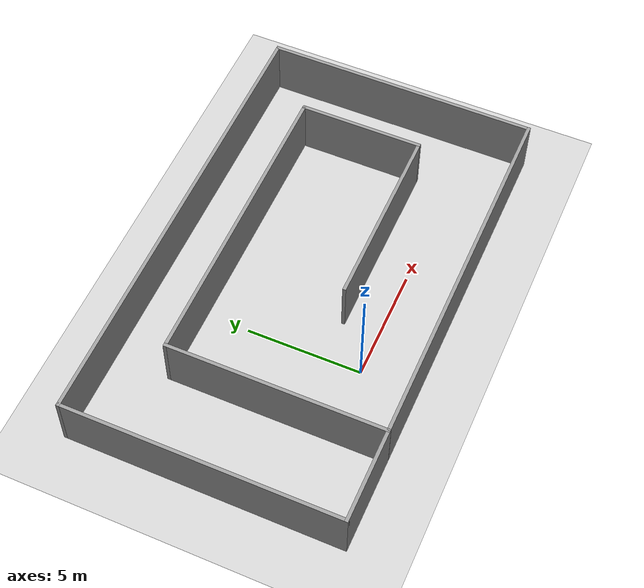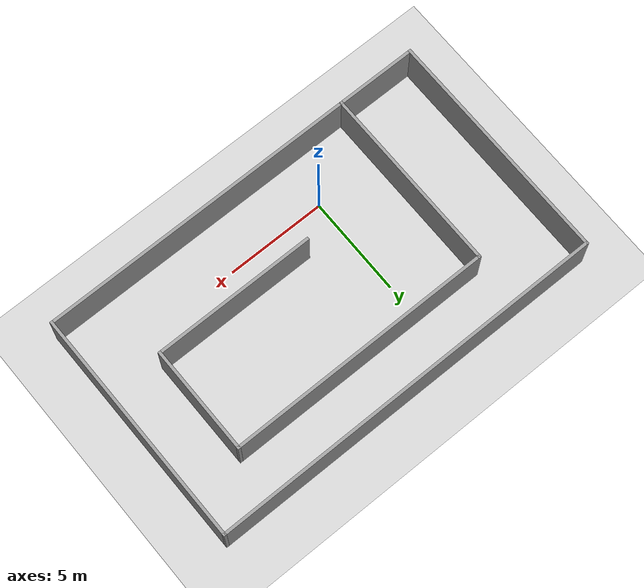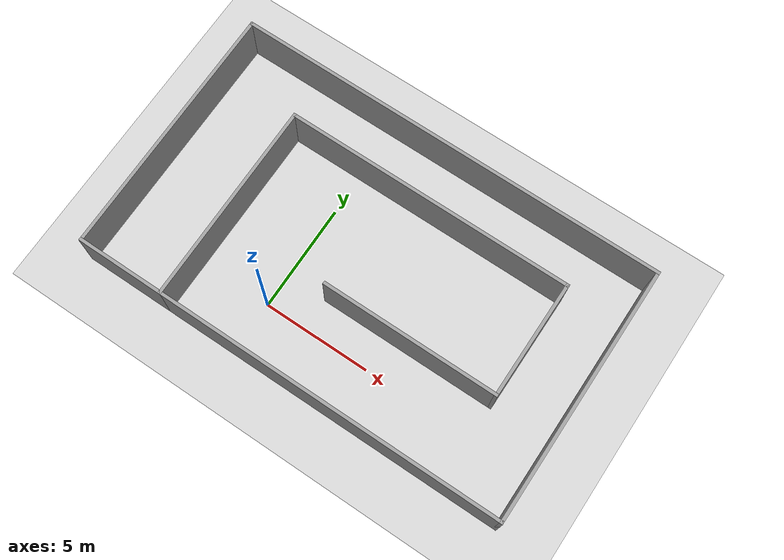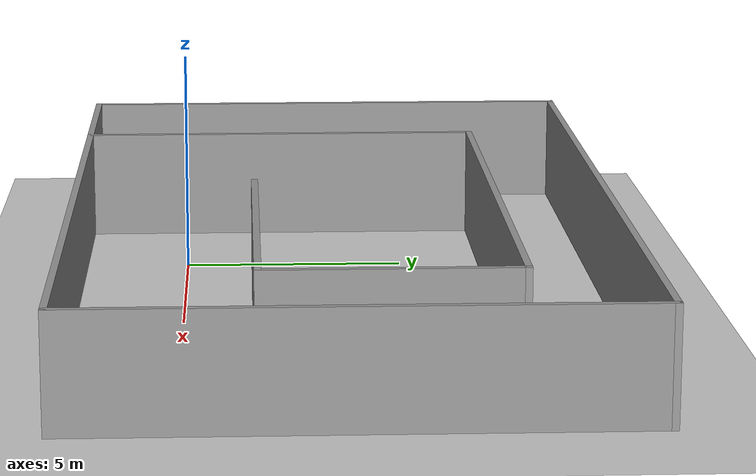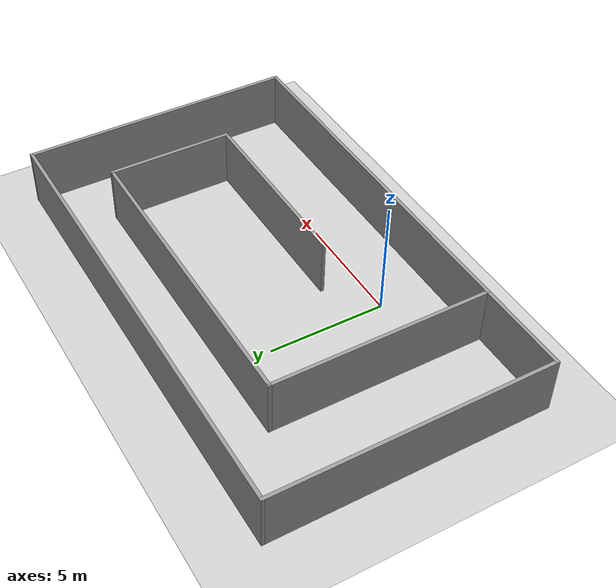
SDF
<sdf version="1.7">
 <world name="default">
  <light name="sun" type="directional">
   <pose>0 0 10 0 -0 0</pose>
   <diffuse>0.8 0.8 0.8 1</diffuse>
   <specular>0.1 0.1 0.1 1</specular>
   <attenuation>
    <range>1000</range>
    <constant>0.9</constant>
    <linear>0.01</linear>
    <quadratic>0.001</quadratic>
   </attenuation>
   <direction>-0.5 0.5 -1</direction>
   <spot><inner_angle>0</inner_angle><outer_angle>0</outer_angle><falloff>0</falloff></spot>
  </light>
  <model name="ground_plane">
   <static>1</static>
   <link name="link">
    <collision name="collision">
     <geometry><plane><normal>0 0 1</normal><size>100 100</size></plane></geometry>
     <surface><friction><ode><mu>100</mu><mu2>50</mu2></ode></friction></surface>
    </collision>
    <visual name="visual">
     <cast_shadows>0</cast_shadows>
     <geometry><plane><normal>0 0 1</normal><size>100 100</size></plane></geometry>
     <material>
      <script><uri>file://media/materials/scripts/gazebo.material</uri><name>Gazebo/Grey</name></script>
     </material>
    </visual>
   </link>
  </model>
  <gravity>0 0 -9.8</gravity>
  <magnetic_field>6e-06 2.3e-05 -4.2e-05</magnetic_field>
  <atmosphere type="adiabatic"/>
  <physics name="default_physics" default="0" type="ode">
   <max_step_size>0.001</max_step_size>
   <real_time_factor>1</real_time_factor>
   <real_time_update_rate>1000</real_time_update_rate>
  </physics>
  <scene><ambient>0.4 0.4 0.4 1</ambient><background>0.7 0.7 0.7 1</background><shadows>1</shadows></scene>
  <spherical_coordinates>
   <surface_model>EARTH_WGS84</surface_model>
   <latitude_deg>0</latitude_deg>
   <longitude_deg>0</longitude_deg>
   <elevation>0</elevation>
   <heading_deg>0</heading_deg>
  </spherical_coordinates>
  <audio><device>default</device></audio>
  <model name="custom_wall">
   <pose>2.75173 3.49602 0 0 -0 0</pose>
   <link name="Wall_12">
    <collision name="Wall_12_Collision">
     <geometry><box><size>8.25 0.15 2.5</size></box></geometry>
     <pose>0 0 1.25 0 -0 0</pose>
    </collision>
    <visual name="Wall_12_Visual">
     <pose>0 0 1.25 0 -0 0</pose>
     <geometry><box><size>8.25 0.15 2.5</size></box></geometry>
     <material>
      <script><uri>file://media/materials/scripts/gazebo.material</uri><name>Gazebo/Grey</name></script>
      <ambient>1 1 1 1</ambient>
     </material>
     <meta><layer>0</layer></meta>
    </visual>
    <pose>3.25 -1.925 0 0 -0 0</pose>
   </link>
   <link name="Wall_13">
    <collision name="Wall_13_Collision">
     <geometry><box><size>5.5 0.15 2.5</size></box></geometry>
     <pose>0 0 1.25 0 -0 0</pose>
    </collision>
    <visual name="Wall_13_Visual">
     <pose>0 0 1.25 0 -0 0</pose>
     <geometry><box><size>5.5 0.15 2.5</size></box></geometry>
     <material>
      <script><uri>file://media/materials/scripts/gazebo.material</uri><name>Gazebo/Grey</name></script>
      <ambient>1 1 1 1</ambient>
     </material>
     <meta><layer>0</layer></meta>
    </visual>
    <pose>7.3 0.75 0 0 -0 1.5708</pose>
   </link>
   <link name="Wall_14">
    <collision name="Wall_14_Collision">
     <geometry><box><size>13.5 0.15 2.5</size></box></geometry>
     <pose>0 0 1.25 0 -0 0</pose>
    </collision>
    <visual name="Wall_14_Visual">
     <pose>0 0 1.25 0 -0 0</pose>
     <geometry><box><size>13.5 0.15 2.5</size></box></geometry>
     <material>
      <script><uri>file://media/materials/scripts/gazebo.material</uri><name>Gazebo/Grey</name></script>
      <ambient>1 1 1 1</ambient>
     </material>
     <meta><layer>0</layer></meta>
    </visual>
    <pose>0.625 3.425 0 0 -0 3.14159</pose>
   </link>
   <link name="Wall_15">
    <collision name="Wall_15_Collision">
     <geometry><box><size>9.5 0.15 2.5</size></box></geometry>
     <pose>0 0 1.25 0 -0 0</pose>
    </collision>
    <visual name="Wall_15_Visual">
     <pose>0 0 1.25 0 -0 0</pose>
     <geometry><box><size>9.5 0.15 2.5</size></box></geometry>
     <material>
      <script><uri>file://media/materials/scripts/gazebo.material</uri><name>Gazebo/Grey</name></script>
      <ambient>1 1 1 1</ambient>
     </material>
     <meta><layer>0</layer></meta>
    </visual>
    <pose>-6.05 -1.25 0 0 -0 -1.5708</pose>
   </link>
   <link name="Wall_16">
    <collision name="Wall_16_Collision">
     <geometry><box><size>16.25 0.15 2.5</size></box></geometry>
     <pose>0 0 1.25 0 -0 0</pose>
    </collision>
    <visual name="Wall_16_Visual">
     <pose>0 0 1.25 0 -0 0</pose>
     <geometry><box><size>16.25 0.15 2.5</size></box></geometry>
     <material>
      <script><uri>file://media/materials/scripts/gazebo.material</uri><name>Gazebo/Grey</name></script>
      <ambient>1 1 1 1</ambient>
     </material>
     <meta><layer>0</layer></meta>
    </visual>
    <pose>2 -5.925 0 0 -0 0</pose>
   </link>
   <link name="Wall_17">
    <collision name="Wall_17_Collision">
     <geometry><box><size>12 0.15 2.5</size></box></geometry>
     <pose>0 0 1.25 0 -0 0</pose>
    </collision>
    <visual name="Wall_17_Visual">
     <pose>0 0 1.25 0 -0 0</pose>
     <geometry><box><size>12 0.15 2.5</size></box></geometry>
     <material>
      <script><uri>file://media/materials/scripts/gazebo.material</uri><name>Gazebo/Grey</name></script>
      <ambient>1 1 1 1</ambient>
     </material>
     <meta><layer>0</layer></meta>
    </visual>
    <pose>10.05 -0 0 0 -0 1.5708</pose>
   </link>
   <link name="Wall_18">
    <collision name="Wall_18_Collision">
     <geometry><box><size>20.25 0.15 2.5</size></box></geometry>
     <pose>0 0 1.25 0 -0 0</pose>
    </collision>
    <visual name="Wall_18_Visual">
     <pose>0 0 1.25 0 -0 0</pose>
     <geometry><box><size>20.25 0.15 2.5</size></box></geometry>
     <material>
      <script><uri>file://media/materials/scripts/gazebo.material</uri><name>Gazebo/Grey</name></script>
      <ambient>1 1 1 1</ambient>
     </material>
     <meta><layer>0</layer></meta>
    </visual>
    <pose>0 5.925 0 0 -0 3.14159</pose>
   </link>
   <link name="Wall_19">
    <collision name="Wall_19_Collision">
     <geometry><box><size>12 0.15 2.5</size></box></geometry>
     <pose>0 0 1.25 0 -0 0</pose>
    </collision>
    <visual name="Wall_19_Visual">
     <pose>0 0 1.25 0 -0 0</pose>
     <geometry><box><size>12 0.15 2.5</size></box></geometry>
     <material>
      <script><uri>file://media/materials/scripts/gazebo.material</uri><name>Gazebo/Grey</name></script>
      <ambient>1 1 1 1</ambient>
     </material>
     <meta><layer>0</layer></meta>
    </visual>
    <pose>-10.05 -0 0 0 -0 -1.5708</pose>
   </link>
   <link name="Wall_20">
    <collision name="Wall_20_Collision">
     <geometry><box><size>4.15 0.15 2.5</size></box></geometry>
     <pose>0 0 1.25 0 -0 0</pose>
    </collision>
    <visual name="Wall_20_Visual">
     <pose>0 0 1.25 0 -0 0</pose>
     <geometry><box><size>4.15 0.15 2.5</size></box></geometry>
     <material>
      <script><uri>file://media/materials/scripts/gazebo.material</uri><name>Gazebo/Grey</name></script>
      <ambient>1 1 1 1</ambient>
     </material>
     <meta><layer>0</layer></meta>
    </visual>
    <pose>-8.05 -5.925 0 0 -0 0</pose>
   </link>
   <static>1</static>
  </model>
 </world>
</sdf>
